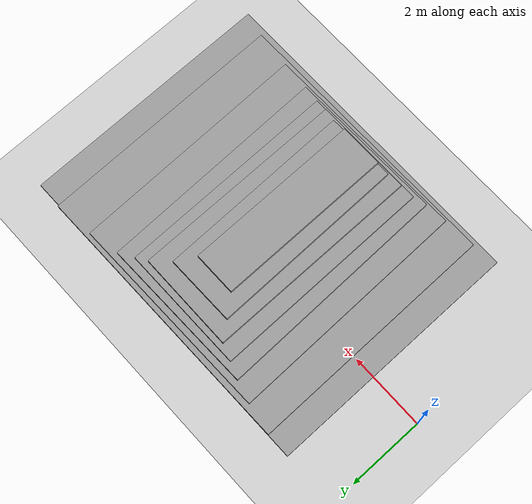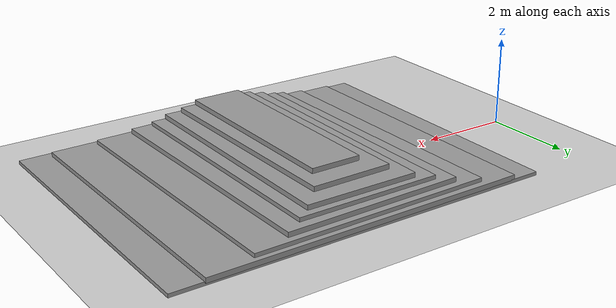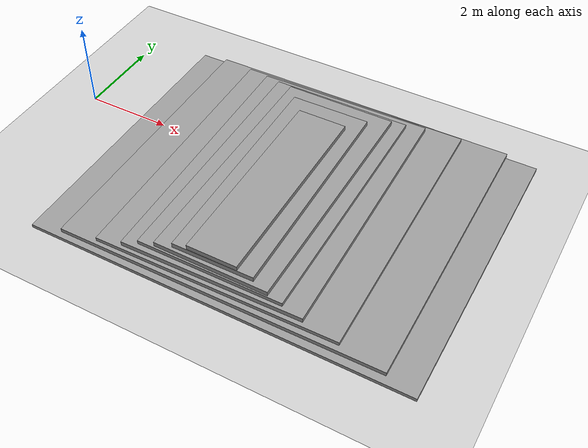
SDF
<sdf version="1.7">
 <world name="default">
  <model name="ground_plane">
   <static>1</static>
   <link name="link">
    <collision name="collision">
     <geometry><plane><normal>0 0 1</normal><size>100 100</size></plane></geometry>
     <surface><friction><ode><mu>0.7</mu><mu2>0.7</mu2></ode></friction></surface>
    </collision>
    <visual name="visual">
     <cast_shadows>0</cast_shadows>
     <geometry><plane><normal>0 0 1</normal><size>100 100</size></plane></geometry>
     <material>
      <script><uri>file://media/materials/scripts/gazebo.material</uri><name>Gazebo/Grey</name></script>
     </material>
    </visual>
   </link>
  </model>
  <light name="sun" type="directional">
   <pose>0 0 10 0 -0 0</pose>
   <diffuse>0.8 0.8 0.8 1</diffuse>
   <specular>0.1 0.1 0.1 1</specular>
   <attenuation>
    <range>1000</range>
    <constant>0.9</constant>
    <linear>0.01</linear>
    <quadratic>0.001</quadratic>
   </attenuation>
   <direction>-0.5 0.5 -1</direction>
   <spot><inner_angle>0</inner_angle><outer_angle>0</outer_angle><falloff>0</falloff></spot>
  </light>
  <gravity>0 0 -9.81</gravity>
  <magnetic_field>6e-06 2.3e-05 -4.2e-05</magnetic_field>
  <atmosphere type="adiabatic"/>
  <physics name="default_physics" default="0" type="ode">
   <max_step_size>0.001</max_step_size>
   <real_time_factor>1</real_time_factor>
   <real_time_update_rate>1000</real_time_update_rate>
  </physics>
  <scene><ambient>0.4 0.4 0.4 1</ambient><background>0.7 0.7 0.7 1</background><shadows>1</shadows></scene>
  <spherical_coordinates>
   <surface_model>EARTH_WGS84</surface_model>
   <latitude_deg>0</latitude_deg>
   <longitude_deg>0</longitude_deg>
   <elevation>0</elevation>
   <heading_deg>0</heading_deg>
  </spherical_coordinates>
  <model name="unit_box">
   <static>1</static>
   <pose>5.78133 -0.659851 0.038678 5e-06 1.5e-05 0.001025</pose>
   <link name="link">
    <inertial>
     <mass>1</mass>
     <inertia>
      <ixx>0.166667</ixx>
      <ixy>0</ixy>
      <ixz>0</ixz>
      <iyy>0.166667</iyy>
      <iyz>0</iyz>
      <izz>0.166667</izz>
     </inertia>
    </inertial>
    <collision name="collision"><geometry><box><size>8.68409 6.67615 0.0802598</size></box></geometry></collision>
    <visual name="visual">
     <geometry><box><size>8.68409 6.67615 0.0802598</size></box></geometry>
     <material>
      <script><name>Gazebo/Grey</name><uri>file://media/materials/scripts/gazebo.material</uri></script>
     </material>
    </visual>
   </link>
  </model>
  <model name="unit_box_clone_clone">
   <static>1</static>
   <pose>5.76077 -0.573205 0.117159 -1.3e-05 1e-05 0.006134</pose>
   <link name="link">
    <inertial>
     <mass>1</mass>
     <inertia>
      <ixx>0.166667</ixx>
      <ixy>0</ixy>
      <ixz>0</ixz>
      <iyy>0.166667</iyy>
      <iyz>0</iyz>
      <izz>0.166667</izz>
     </inertia>
    </inertial>
    <collision name="collision"><geometry><box><size>7.33716 6.53951 0.110738</size></box></geometry></collision>
    <visual name="visual">
     <geometry><box><size>7.33716 6.53951 0.110738</size></box></geometry>
     <material>
      <script><name>Gazebo/Grey</name><uri>file://media/materials/scripts/gazebo.material</uri></script>
     </material>
    </visual>
   </link>
  </model>
  <model name="unit_box_clone_clone_0">
   <static>1</static>
   <pose>5.65545 -0.584328 0.199009 -6.8e-05 1e-05 0.013495</pose>
   <link name="link">
    <inertial>
     <mass>1</mass>
     <inertia>
      <ixx>0.166667</ixx>
      <ixy>0</ixy>
      <ixz>0</ixz>
      <iyy>0.166667</iyy>
      <iyz>0</iyz>
      <izz>0.166667</izz>
     </inertia>
    </inertial>
    <collision name="collision"><geometry><box><size>5.48859 6.30633 0.119846</size></box></geometry></collision>
    <visual name="visual">
     <geometry><box><size>5.48859 6.30633 0.119846</size></box></geometry>
     <material>
      <script><name>Gazebo/Grey</name><uri>file://media/materials/scripts/gazebo.material</uri></script>
     </material>
    </visual>
   </link>
  </model>
  <model name="unit_box_clone_clone_1">
   <static>1</static>
   <pose>5.53214 -0.620945 0.264766 -6.9e-05 1e-05 0.016868</pose>
   <link name="link">
    <inertial>
     <mass>1</mass>
     <inertia>
      <ixx>0.166667</ixx>
      <ixy>0</ixy>
      <ixz>0</ixz>
      <iyy>0.166667</iyy>
      <iyz>0</iyz>
      <izz>0.166667</izz>
     </inertia>
    </inertial>
    <collision name="collision"><geometry><box><size>4.10589 6.06711 0.201035</size></box></geometry></collision>
    <visual name="visual">
     <geometry><box><size>4.10589 6.06711 0.201035</size></box></geometry>
     <material>
      <script><name>Gazebo/Grey</name><uri>file://media/materials/scripts/gazebo.material</uri></script>
     </material>
    </visual>
   </link>
  </model>
  <model name="unit_box_0">
   <static>1</static>
   <pose>5.50051 -0.666735 0.396683 1.6e-05 4.6e-05 0.004141</pose>
   <link name="link">
    <inertial>
     <mass>1</mass>
     <inertia>
      <ixx>0.166667</ixx>
      <ixy>0</ixy>
      <ixz>0</ixz>
      <iyy>0.166667</iyy>
      <iyz>0</iyz>
      <izz>0.166667</izz>
     </inertia>
    </inertial>
    <collision name="collision"><geometry><box><size>3.30244 5.78441 0.116655</size></box></geometry></collision>
    <visual name="visual">
     <geometry><box><size>3.30244 5.78441 0.116655</size></box></geometry>
     <material>
      <script><name>Gazebo/Grey</name><uri>file://media/materials/scripts/gazebo.material</uri></script>
     </material>
    </visual>
   </link>
  </model>
  <model name="unit_box_1">
   <static>1</static>
   <pose>5.54169 -0.726782 0.507142 1.6e-05 4.6e-05 -0.0027</pose>
   <link name="link">
    <inertial>
     <mass>1</mass>
     <inertia>
      <ixx>0.166667</ixx>
      <ixy>0</ixy>
      <ixz>0</ixz>
      <iyy>0.166667</iyy>
      <iyz>0</iyz>
      <izz>0.166667</izz>
     </inertia>
    </inertial>
    <collision name="collision"><geometry><box><size>2.59643 5.5961 0.114633</size></box></geometry></collision>
    <visual name="visual">
     <geometry><box><size>2.59643 5.5961 0.114633</size></box></geometry>
     <material>
      <script><name>Gazebo/Grey</name><uri>file://media/materials/scripts/gazebo.material</uri></script>
     </material>
    </visual>
   </link>
  </model>
  <model name="unit_box_2">
   <static>1</static>
   <pose>5.52422 -0.889481 0.620246 -0.000145 0.000178 0.010165</pose>
   <link name="link">
    <inertial>
     <mass>1</mass>
     <inertia>
      <ixx>0.166667</ixx>
      <ixy>0</ixy>
      <ixz>0</ixz>
      <iyy>0.166667</iyy>
      <iyz>0</iyz>
      <izz>0.166667</izz>
     </inertia>
    </inertial>
    <collision name="collision"><geometry><box><size>1.8439 5.10485 0.112139</size></box></geometry></collision>
    <visual name="visual">
     <geometry><box><size>1.8439 5.10485 0.112139</size></box></geometry>
     <material>
      <script><name>Gazebo/Grey</name><uri>file://media/materials/scripts/gazebo.material</uri></script>
     </material>
    </visual>
   </link>
  </model>
  <model name="unit_box_3">
   <static>1</static>
   <pose>5.53802 -1.13016 0.732554 -0.000147 0.000168 0.000287</pose>
   <link name="link">
    <inertial>
     <mass>1</mass>
     <inertia>
      <ixx>0.166667</ixx>
      <ixy>0</ixy>
      <ixz>0</ixz>
      <iyy>0.166667</iyy>
      <iyz>0</iyz>
      <izz>0.166667</izz>
     </inertia>
    </inertial>
    <collision name="collision"><geometry><box><size>1.14387 4.61334 0.112419</size></box></geometry></collision>
    <visual name="visual">
     <geometry><box><size>1.14387 4.61334 0.112419</size></box></geometry>
     <material>
      <script><name>Gazebo/Grey</name><uri>file://media/materials/scripts/gazebo.material</uri></script>
     </material>
    </visual>
   </link>
  </model>
 </world>
</sdf>
